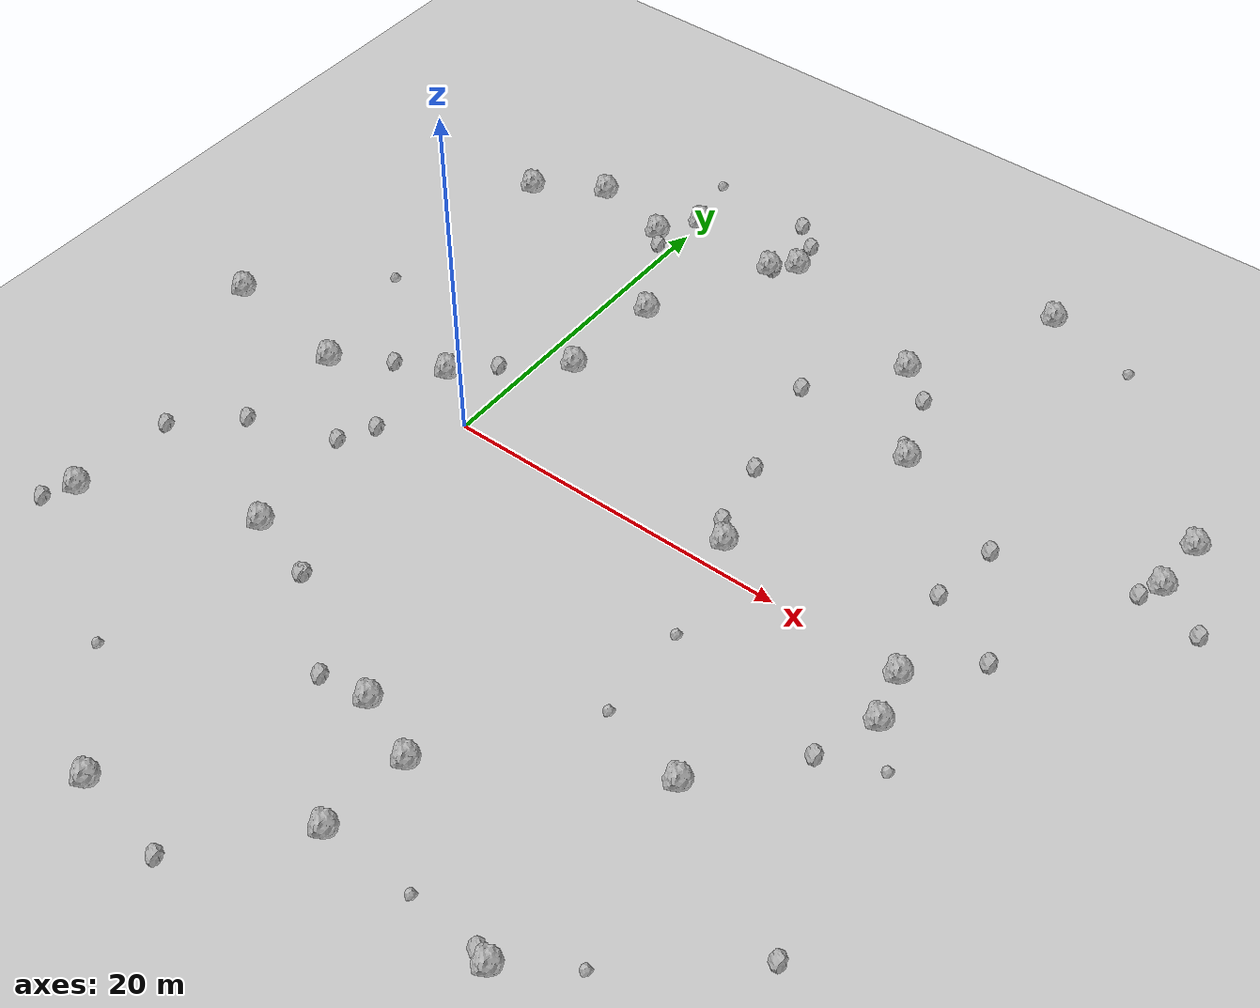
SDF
<sdf version="1.6">
 <world name="default">
  <include><uri>model://custom_ground</uri></include>
  <include><uri>model://sun</uri></include>
  <model name="rock1_0_0">
   <include><uri>model://rock1</uri><pose>34.692220365280605 12.527927428301489 0.5 0 0 0</pose></include>
  </model>
  <model name="rock1_0_1">
   <include><uri>model://rock1</uri><pose>8.420400885562579 -16.615798098021653 0.5 0 0 0</pose></include>
  </model>
  <model name="rock1_0_2">
   <include><uri>model://rock1</uri><pose>-17.06683805358835 0.5384646517541256 0.5 0 0 0</pose></include>
  </model>
  <model name="rock1_0_3">
   <include><uri>model://rock1</uri><pose>-1.4772260138726807 19.116353372316873 0.5 0 0 0</pose></include>
  </model>
  <model name="rock1_0_4">
   <include><uri>model://rock1</uri><pose>34.800081229509345 15.921887355699113 0.5 0 0 0</pose></include>
  </model>
  <model name="rock1_0_5">
   <include><uri>model://rock1</uri><pose>6.8038193167206416 21.59052578320982 0.5 0 0 0</pose></include>
  </model>
  <model name="rock1_0_6">
   <include><uri>model://rock1</uri><pose>22.725848736871413 -11.455604076115861 0.5 0 0 0</pose></include>
  </model>
  <model name="rock1_0_7">
   <include><uri>model://rock1</uri><pose>-6.206110380473902 20.26548987328318 0.5 0 0 0</pose></include>
  </model>
  <model name="rock1_0_8">
   <include><uri>model://rock1</uri><pose>28.094841797491256 -3.0002272057829984 0.5 0 0 0</pose></include>
  </model>
  <model name="rock1_0_9">
   <include><uri>model://rock1</uri><pose>-10.011091409006452 17.9424704147499 0.5 0 0 0</pose></include>
  </model>
  <model name="rock1_0_10">
   <include><uri>model://rock1</uri><pose>11.765073804513012 -23.134301102692234 0.5 0 0 0</pose></include>
  </model>
  <model name="rock1_0_11">
   <include><uri>model://rock1</uri><pose>5.612186752007002 20.43176234385279 0.5 0 0 0</pose></include>
  </model>
  <model name="rock1_0_12">
   <include><uri>model://rock1</uri><pose>1.3344057280815882 -27.78583141082697 0.5 0 0 0</pose></include>
  </model>
  <model name="rock1_0_13">
   <include><uri>model://rock1</uri><pose>-12.868221439911053 -15.734397181333328 0.5 0 0 0</pose></include>
  </model>
  <model name="rock1_0_14">
   <include><uri>model://rock1</uri><pose>0.01977153954779709 21.382518396277497 0.5 0 0 0</pose></include>
  </model>
  <model name="rock1_0_15">
   <include><uri>model://rock1</uri><pose>27.326544175636194 -0.11750851875581958 0.5 0 0 0</pose></include>
  </model>
  <model name="rock1_0_16">
   <include><uri>model://rock1</uri><pose>15.869887902540057 1.6668947294319274 0.5 0 0 0</pose></include>
  </model>
  <model name="rock1_0_17">
   <include><uri>model://rock1</uri><pose>12.157873640422679 -18.126366799314006 0.5 0 0 0</pose></include>
  </model>
  <model name="rock1_0_18">
   <include><uri>model://rock1</uri><pose>-3.572967481544662 -11.681449444241721 0.5 0 0 0</pose></include>
  </model>
  <model name="rock1_0_19">
   <include><uri>model://rock1</uri><pose>20.05507339208316 12.286010932311463 0.5 0 0 0</pose></include>
  </model>
  <model name="rock1_0_20">
   <include><uri>model://rock1</uri><pose>-9.233574346076205 -0.6792143595945248 0.5 0 0 0</pose></include>
  </model>
  <model name="rock1_0_21">
   <include><uri>model://rock1</uri><pose>2.203019770497413 13.224989192532014 0.5 0 0 0</pose></include>
  </model>
  <model name="rock1_0_22">
   <include><uri>model://rock1</uri><pose>16.421980121362104 18.116430850837155 0.5 0 0 0</pose></include>
  </model>
  <model name="rock1_0_23">
   <include><uri>model://rock1</uri><pose>-3.3811702638479133 2.5158046422523412 0.5 0 0 0</pose></include>
  </model>
  <model name="rock1_0_24">
   <include><uri>model://rock1</uri><pose>20.76555995975339 26.63342732501949 0.5 0 0 0</pose></include>
  </model>
  <model name="rock1_0_25">
   <include><uri>model://rock1</uri><pose>21.938502514300197 -23.856296785039106 0.5 0 0 0</pose></include>
  </model>
  <model name="rock1_0_26">
   <include><uri>model://rock1</uri><pose>1.7440070879162164 7.201422855681642 0.5 0 0 0</pose></include>
  </model>
  <model name="rock2_0_0">
   <include><uri>model://rock2</uri><pose>-0.7233027793532933 18.21600601262658 0.3 0 0 0</pose></include>
  </model>
  <model name="rock2_0_1">
   <include><uri>model://rock2</uri><pose>14.945054263640955 2.8341585281367685 0.3 0 0 0</pose></include>
  </model>
  <model name="rock2_0_2">
   <include><uri>model://rock2</uri><pose>26.833498158773793 9.32702853660684 0.3 0 0 0</pose></include>
  </model>
  <model name="rock2_0_3">
   <include><uri>model://rock2</uri><pose>0.4495500964042414 -12.931658812807683 0.3 0 0 0</pose></include>
  </model>
  <model name="rock2_0_4">
   <include><uri>model://rock2</uri><pose>-6.141928622967615 1.262913146766948 0.3 0 0 0</pose></include>
  </model>
  <model name="rock2_0_5">
   <include><uri>model://rock2</uri><pose>5.046543993866493 24.74949543613058 0.3 0 0 0</pose></include>
  </model>
  <model name="rock2_0_6">
   <include><uri>model://rock2</uri><pose>14.163443647440381 6.841151773640355 0.3 0 0 0</pose></include>
  </model>
  <model name="rock2_0_7">
   <include><uri>model://rock2</uri><pose>30.411871924811074 3.0899953978889627 0.3 0 0 0</pose></include>
  </model>
  <model name="rock2_0_8">
   <include><uri>model://rock2</uri><pose>37.575421906696945 10.777000375006914 0.3 0 0 0</pose></include>
  </model>
  <model name="rock2_0_9">
   <include><uri>model://rock2</uri><pose>5.891523847701265 20.499522083019812 0.3 0 0 0</pose></include>
  </model>
  <model name="rock2_0_10">
   <include><uri>model://rock2</uri><pose>18.488402877802947 16.491467910281727 0.3 0 0 0</pose></include>
  </model>
  <model name="rock2_0_11">
   <include><uri>model://rock2</uri><pose>26.804906964189293 -6.454121145107841 0.3 0 0 0</pose></include>
  </model>
  <model name="rock2_0_12">
   <include><uri>model://rock2</uri><pose>-3.500473736422716 -3.0628072755379847 0.3 0 0 0</pose></include>
  </model>
  <model name="rock2_0_13">
   <include><uri>model://rock2</uri><pose>-12.552281764703896 -9.755175839459746 0.3 0 0 0</pose></include>
  </model>
  <model name="rock2_0_14">
   <include><uri>model://rock2</uri><pose>-1.3998401460169454 4.551954727645736 0.3 0 0 0</pose></include>
  </model>
  <model name="rock2_0_15">
   <include><uri>model://rock2</uri><pose>-4.514586650522428 -5.012370253686658 0.3 0 0 0</pose></include>
  </model>
  <model name="rock2_0_16">
   <include><uri>model://rock2</uri><pose>0.5683895260113943 -12.853798266071127 0.3 0 0 0</pose></include>
  </model>
  <model name="rock2_0_17">
   <include><uri>model://rock2</uri><pose>-13.706983908351354 -17.35119797360236 0.3 0 0 0</pose></include>
  </model>
  <model name="rock2_0_18">
   <include><uri>model://rock2</uri><pose>6.500779797055355 23.466711791661332 0.3 0 0 0</pose></include>
  </model>
  <model name="rock2_0_19">
   <include><uri>model://rock2</uri><pose>12.69281182531688 13.33000652076555 0.3 0 0 0</pose></include>
  </model>
  <model name="rock2_0_20">
   <include><uri>model://rock2</uri><pose>-9.440778264519853 -6.7650476365882355 0.3 0 0 0</pose></include>
  </model>
  <model name="rock2_0_21">
   <include><uri>model://rock2</uri><pose>26.30514204384437 5.2745356945108455 0.3 0 0 0</pose></include>
  </model>
  <model name="rock2_0_22">
   <include><uri>model://rock2</uri><pose>31.500594971031724 -16.180954645228027 0.3 0 0 0</pose></include>
  </model>
  <model name="rock2_0_23">
   <include><uri>model://rock2</uri><pose>21.06361786209029 -23.51889860713351 0.3 0 0 0</pose></include>
  </model>
  <model name="rock2_0_24">
   <include><uri>model://rock2</uri><pose>6.850953067403125 -28.738910709627024 0.3 0 0 0</pose></include>
  </model>
  <model name="rock2_0_25">
   <include><uri>model://rock2</uri><pose>34.05822209163501 11.34655415293608 0.3 0 0 0</pose></include>
  </model>
  <model name="rock2_0_26">
   <include><uri>model://rock2</uri><pose>5.643471254645792 -16.985783407567205 0.3 0 0 0</pose></include>
  </model>
  <model name="rock3_0_0">
   <include><uri>model://rock3</uri><pose>25.313175054385006 -21.491094941306454 0.2 0 0 0</pose></include>
  </model>
  <model name="rock3_0_1">
   <include><uri>model://rock3</uri><pose>17.501785861347756 -4.622185434053176 0.2 0 0 0</pose></include>
  </model>
  <model name="rock3_0_2">
   <include><uri>model://rock3</uri><pose>-0.9916566804606433 25.01239010923672 0.2 0 0 0</pose></include>
  </model>
  <model name="rock3_0_3">
   <include><uri>model://rock3</uri><pose>17.022799402570463 -23.27864131653598 0.2 0 0 0</pose></include>
  </model>
  <model name="rock3_0_4">
   <include><uri>model://rock3</uri><pose>26.172359986234234 25.196335910639682 0.2 0 0 0</pose></include>
  </model>
  <model name="rock3_0_5">
   <include><uri>model://rock3</uri><pose>19.212711150312437 13.27541525587447 0.2 0 0 0</pose></include>
  </model>
  <model name="rock3_0_6">
   <include><uri>model://rock3</uri><pose>29.923786678601836 -5.165361718427828 0.2 0 0 0</pose></include>
  </model>
  <model name="rock3_0_7">
   <include><uri>model://rock3</uri><pose>-10.978741549469351 6.605177380820038 0.2 0 0 0</pose></include>
  </model>
  <model name="rock3_0_8">
   <include><uri>model://rock3</uri><pose>-4.249929001339439 -22.14388988113959 0.2 0 0 0</pose></include>
  </model>
  <model name="rock3_0_9">
   <include><uri>model://rock3</uri><pose>17.735954315564562 -10.23670746405432 0.2 0 0 0</pose></include>
  </model>
 </world>
</sdf>
